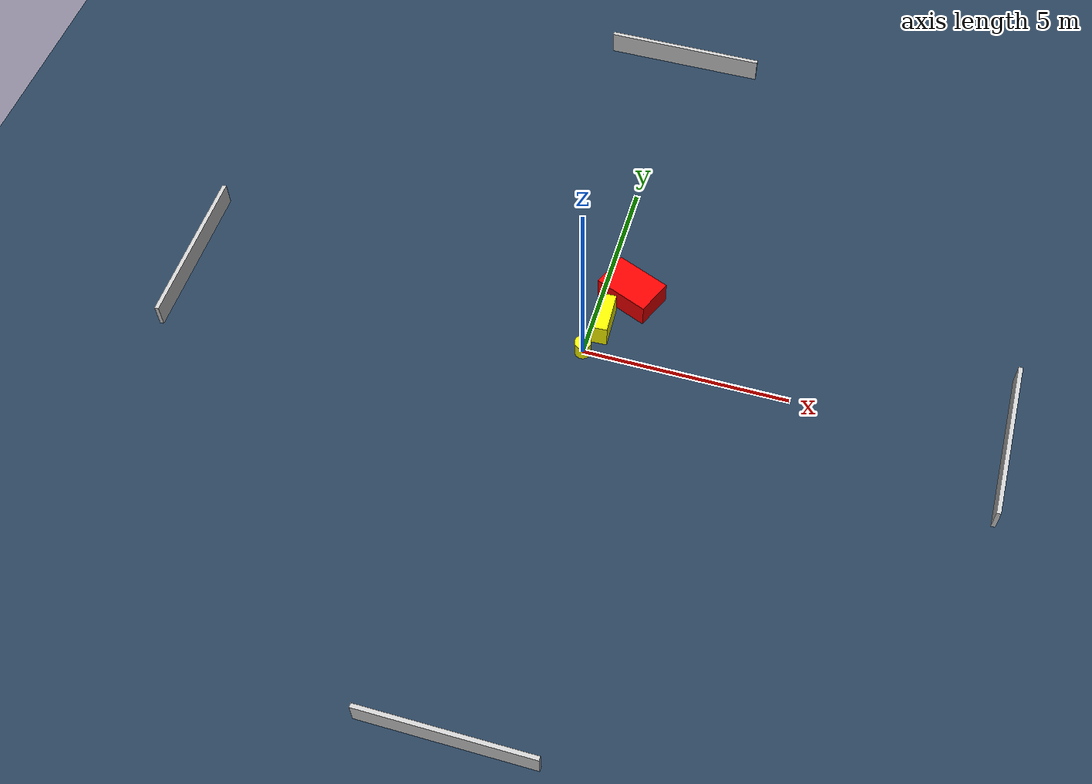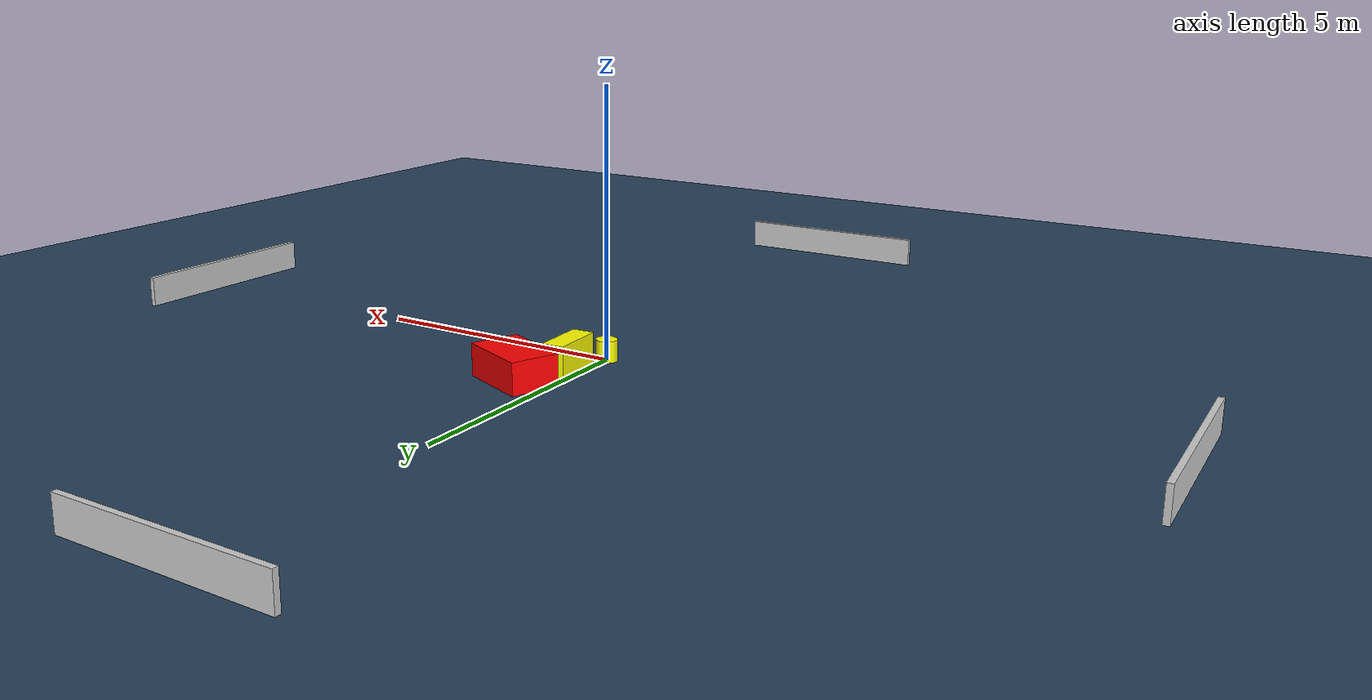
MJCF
<?xml version="1.0" ?>
<mujoco model="generated_environment">
  <option timestep="0.01" integrator="RK4" cone="elliptic"/>
  <default>
    <geom density="1"/>
  </default>
  <asset>
    <texture builtin="gradient" height="3072" name="skybox" rgb1="0.3 0.5 0.7" rgb2="0 0 0" type="skybox" width="512"/>
    <texture builtin="checker" height="300" name="groundplane" rgb1="0.2 0.3 0.4" rgb2="0.1 0.2 0.3" type="2d" width="300"/>
    <material name="groundplane" reflectance="0.2" texrepeat="5 5" texture="groundplane"/>
  </asset>
  <worldbody>
    <light dir="0 0 -1" directional="true" pos="0 0 1.5"/>
    <geom condim="3" friction="0.5 0.005 0.001" material="groundplane" name="floor" pos="0 0 0" size="0 0 0.05" type="plane"/>
    <body name="walls">
      <geom name="wall_1" condim="4" pos="-10.0 0.0 0.3" rgba="0.800000011920929 0.800000011920929 0.800000011920929 1.0" size="0.05 2.0 0.3" type="box"/>
      <geom name="wall_2" condim="4" pos="10.0 0.0 0.3" rgba="0.800000011920929 0.800000011920929 0.800000011920929 1.0" size="0.05 2.0 0.3" type="box"/>
      <geom name="wall_3" condim="4" pos="0.0 -10.0 0.3" rgba="0.800000011920929 0.800000011920929 0.800000011920929 1.0" size="2.0 0.05 0.3" type="box"/>
      <geom name="wall_4" condim="4" pos="0.0 10.0 0.3" rgba="0.800000011920929 0.800000011920929 0.800000011920929 1.0" size="2.0 0.05 0.3" type="box"/>
    </body>
    <body name="robot">
      <joint name="joint_x" type="slide" pos="0 0 0" axis="1 0 0"/>
      <joint name="joint_y" type="slide" pos="0 0 0" axis="0 1 0"/>
      <geom name="robot" type="cylinder" pos="0.0 0.0 0.2" size="0.2 0.2 0.0" mass="5.0" friction="1.0 0.005 0.0001" condim="4" rgba="1.0 1.0 0.0 1.0"/>
    </body>
    <body name="obstacle_1_movable">
      <geom name="obstacle_1_movable" condim="4" pos="0.25821543863670005 0.8641070093452036 0.3" euler="0 0 92.56842897748552" friction="0.0 0.005 0.001" rgba="1.0 1.0 0.0 1.0" size="0.5186964876000979 0.20656221640595074 0.3" type="box" mass="0.1"/>
      <joint type="free"/>
    </body>
    <body name="obstacle_2_static">
      <geom name="obstacle_2_static" condim="4" pos="0.6963912382197511 1.8729391798472765 0.3" euler="0 0 67.30120109238041" friction="0.0 0.005 0.001" rgba="1.0 0.0 0.0 1.0" size="0.45778982033518556 0.689954696866838 0.3" type="box"/>
    </body>
  </worldbody>
  <actuator>
    <motor name="actuator_x" joint="joint_x" gear="1" ctrlrange="-1 1"/>
    <motor name="actuator_y" joint="joint_y" gear="1" ctrlrange="-1 1"/>
  </actuator>
</mujoco>
